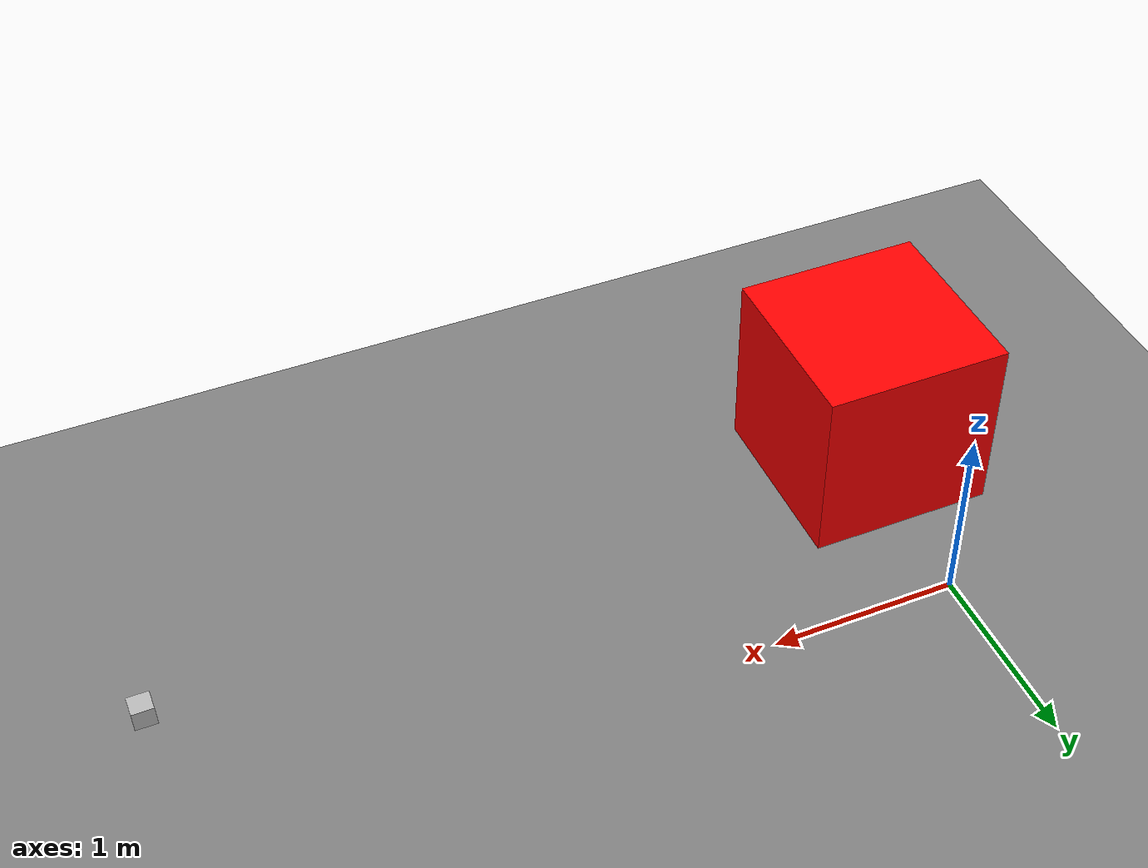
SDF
<?xml version="1.0" ?>
<!-- Minimal, repository-owned Gazebo Fortress RGB camera scene. -->
<sdf version="1.6">
  <world name="ugv_camera_world">
    <physics name="1ms" type="ignored">
      <max_step_size>0.001</max_step_size>
      <real_time_factor>1.0</real_time_factor>
    </physics>
    <plugin filename="ignition-gazebo-physics-system" name="gz::sim::systems::Physics" />
    <plugin filename="ignition-gazebo-sensors-system" name="gz::sim::systems::Sensors">
      <render_engine>ogre</render_engine>
    </plugin>
    <plugin filename="ignition-gazebo-user-commands-system" name="gz::sim::systems::UserCommands" />
    <plugin filename="ignition-gazebo-scene-broadcaster-system" name="gz::sim::systems::SceneBroadcaster" />

    <scene>
      <ambient>0.8 0.8 0.8</ambient>
      <background>0.7 0.7 0.7</background>
      <grid>true</grid>
    </scene>
    <light type="directional" name="sun">
      <pose>0 0 10 0 0 0</pose>
      <diffuse>0.8 0.8 0.8 1</diffuse>
      <specular>0.2 0.2 0.2 1</specular>
      <direction>-0.5 0.1 -0.9</direction>
    </light>

    <model name="ground_plane">
      <static>true</static>
      <link name="link">
        <collision name="collision">
          <geometry><plane><normal>0 0 1</normal><size>20 20</size></plane></geometry>
        </collision>
        <visual name="visual">
          <geometry><plane><normal>0 0 1</normal><size>20 20</size></plane></geometry>
          <material><ambient>0.5 0.5 0.5 1</ambient><diffuse>0.5 0.5 0.5 1</diffuse></material>
        </visual>
      </link>
    </model>

    <model name="camera_target">
      <static>true</static>
      <pose>0 -1 0.5 0 0 0</pose>
      <link name="link">
        <visual name="visual">
          <geometry><box><size>1 1 1</size></box></geometry>
          <material><ambient>1 0 0 1</ambient><diffuse>1 0 0 1</diffuse></material>
        </visual>
      </link>
    </model>

    <model name="camera">
      <static>true</static>
      <pose>4 0 1.0 0 0 3.14</pose>
      <link name="link">
        <visual name="visual"><geometry><box><size>0.1 0.1 0.1</size></box></geometry></visual>
        <sensor name="camera" type="camera">
          <camera>
            <horizontal_fov>1.047</horizontal_fov>
            <image><width>320</width><height>240</height></image>
            <clip><near>0.1</near><far>100</far></clip>
          </camera>
          <always_on>1</always_on>
          <update_rate>30</update_rate>
          <topic>camera</topic>
        </sensor>
      </link>
    </model>
  </world>
</sdf>
